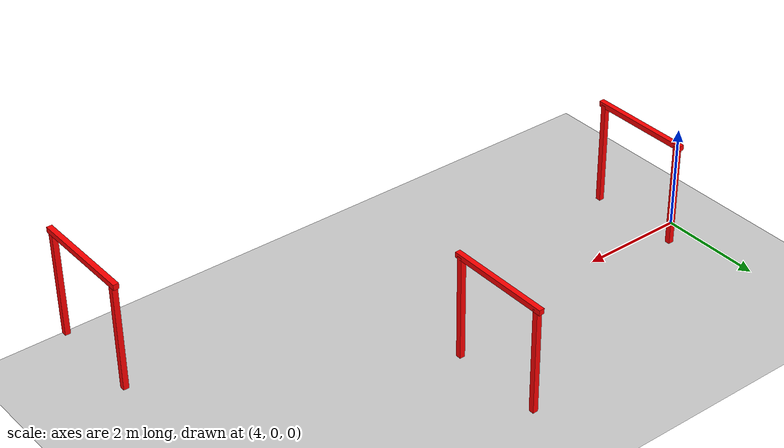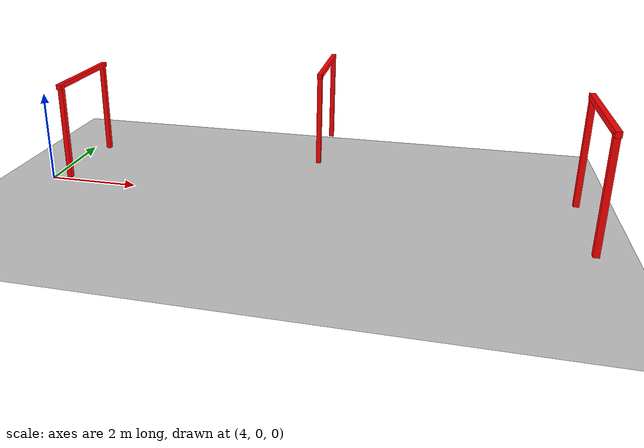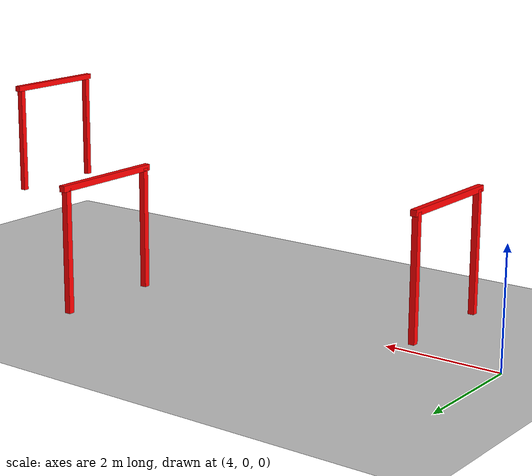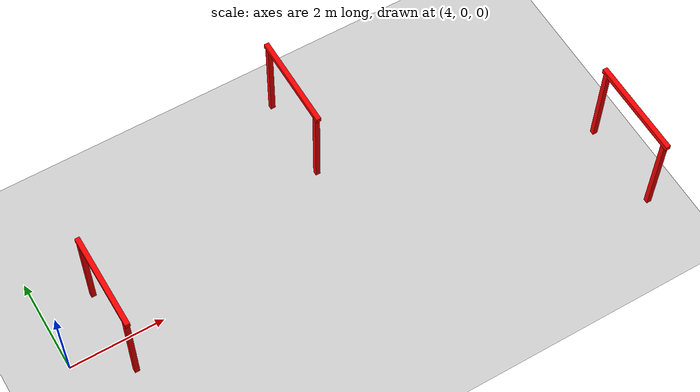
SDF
<sdf version="1.6">
 <world name="quadcopter_gates">
  <physics name="1ms" type="ignored">
   <max_step_size>0.001</max_step_size>
   <real_time_factor>1.0</real_time_factor>
  </physics>
  <plugin filename="gz-sim-physics-system" name="gz::sim::systems::Physics"/>
  <plugin filename="gz-sim-scene-broadcaster-system" name="gz::sim::systems::SceneBroadcaster"/>
  <plugin filename="gz-sim-user-commands-system" name="gz::sim::systems::UserCommands"/>
  <plugin filename="gz-sim-sensors-system" name="gz::sim::systems::Sensors">
   <render_engine>ogre2</render_engine>
  </plugin>
  <light type="directional" name="sun">
   <pose>0 0 10 0 0 0</pose>
   <diffuse>0.8 0.8 0.8 1</diffuse>
   <specular>0.2 0.2 0.2 1</specular>
   <attenuation>
    <range>1000</range>
    <constant>0.9</constant>
    <linear>0.01</linear>
    <quadratic>0.001</quadratic>
   </attenuation>
   <direction>-0.5 0.1 -0.9</direction>
  </light>
  <model name="ground_plane">
   <static>true</static>
   <link name="link">
    <collision name="collision">
     <geometry><plane><normal>0 0 1</normal><size>100 100</size></plane></geometry>
    </collision>
    <visual name="visual">
     <geometry><plane><normal>0 0 1</normal><size>100 100</size></plane></geometry>
     <material><ambient>0.8 0.8 0.8 1</ambient></material>
    </visual>
   </link>
  </model>
  <model name="gate_1">
   <static>true</static>
   <pose>5 0 1.5 0 0 0</pose>
   <link name="link">
    <visual name="left_post">
     <pose>0 0.9 0 0 0 0</pose>
     <geometry><box><size>0.1 0.1 2.0</size></box></geometry>
     <material><ambient>1 0 0 1</ambient></material>
    </visual>
    <visual name="right_post">
     <pose>0 -0.9 0 0 0 0</pose>
     <geometry><box><size>0.1 0.1 2.0</size></box></geometry>
     <material><ambient>1 0 0 1</ambient></material>
    </visual>
    <visual name="top_bar">
     <pose>0 0 1.0 0 0 0</pose>
     <geometry><box><size>0.1 2.0 0.1</size></box></geometry>
     <material><ambient>1 0 0 1</ambient></material>
    </visual>
    <collision name="collision"><geometry><box><size>0.1 2.0 2.0</size></box></geometry></collision>
   </link>
  </model>
  <model name="gate_2">
   <static>true</static>
   <pose>10 2 1.5 0 0 0</pose>
   <link name="link">
    <visual name="left_post">
     <pose>0 0.9 0 0 0 0</pose>
     <geometry><box><size>0.1 0.1 2.0</size></box></geometry>
     <material><ambient>1 0 0 1</ambient></material>
    </visual>
    <visual name="right_post">
     <pose>0 -0.9 0 0 0 0</pose>
     <geometry><box><size>0.1 0.1 2.0</size></box></geometry>
     <material><ambient>1 0 0 1</ambient></material>
    </visual>
    <visual name="top_bar">
     <pose>0 0 1.0 0 0 0</pose>
     <geometry><box><size>0.1 2.0 0.1</size></box></geometry>
     <material><ambient>1 0 0 1</ambient></material>
    </visual>
    <collision name="collision"><geometry><box><size>0.1 2.0 2.0</size></box></geometry></collision>
   </link>
  </model>
  <model name="gate_3">
   <static>true</static>
   <pose>15 -2 2.0 0 0 0</pose>
   <link name="link">
    <visual name="left_post">
     <pose>0 0.9 0 0 0 0</pose>
     <geometry><box><size>0.1 0.1 2.0</size></box></geometry>
     <material><ambient>1 0 0 1</ambient></material>
    </visual>
    <visual name="right_post">
     <pose>0 -0.9 0 0 0 0</pose>
     <geometry><box><size>0.1 0.1 2.0</size></box></geometry>
     <material><ambient>1 0 0 1</ambient></material>
    </visual>
    <visual name="top_bar">
     <pose>0 0 1.0 0 0 0</pose>
     <geometry><box><size>0.1 2.0 0.1</size></box></geometry>
     <material><ambient>1 0 0 1</ambient></material>
    </visual>
    <collision name="collision"><geometry><box><size>0.1 2.0 2.0</size></box></geometry></collision>
   </link>
  </model>
  <model name="drone_camera">
   <pose>0.15 0 0.3 0 0 0</pose>
   <link name="camera_link">
    <inertial>
     <mass>0.001</mass>
     <inertia><ixx>0.000001</ixx><iyy>0.000001</iyy><izz>0.000001</izz></inertia>
    </inertial>
    <sensor name="front_camera" type="camera">
     <camera>
      <horizontal_fov>1.047</horizontal_fov>
      <image><width>640</width><height>480</height></image>
      <clip><near>0.1</near><far>100</far></clip>
     </camera>
     <always_on>1</always_on>
     <update_rate>30</update_rate>
     <visualize>true</visualize>
     <topic>/X3/front_camera</topic>
    </sensor>
   </link>
  </model>
  <joint name="camera_joint" type="fixed">
   <parent>x3::X3/base_link</parent>
   <child>drone_camera::camera_link</child>
  </joint>
 </world>
</sdf>
